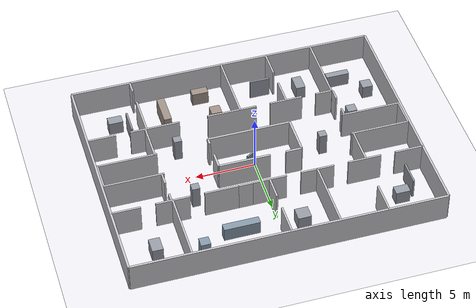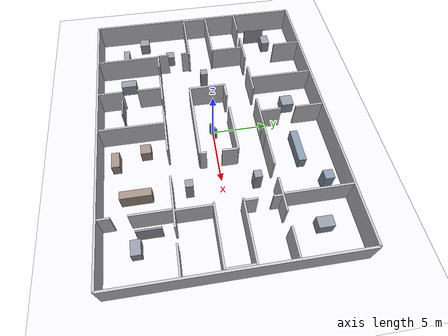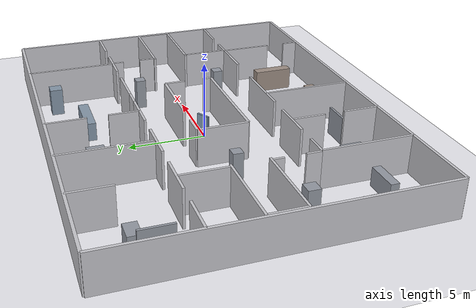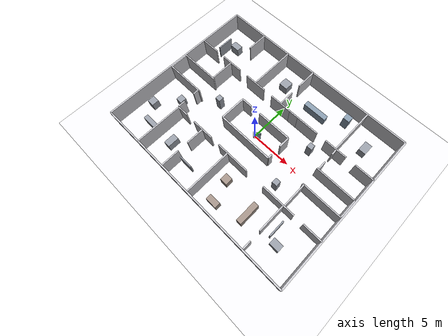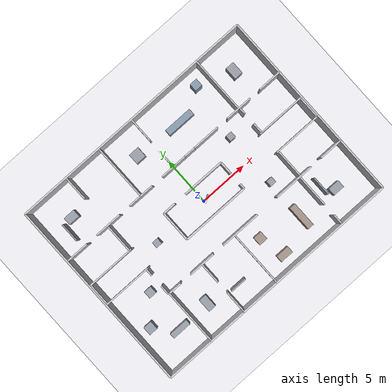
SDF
<?xml version="1.0"?>
<sdf version="1.9"><world name="new_room_world">
<plugin filename="gz-sim-physics-system" name="gz::sim::systems::Physics"/><plugin filename="gz-sim-user-commands-system" name="gz::sim::systems::UserCommands"/><plugin filename="gz-sim-scene-broadcaster-system" name="gz::sim::systems::SceneBroadcaster"/><plugin filename="gz-sim-sensors-system" name="gz::sim::systems::Sensors"><render_engine>ogre2</render_engine></plugin><plugin filename="gz-sim-imu-system" name="gz::sim::systems::Imu"/>
<physics name="new_room_realtime" type="ignored"><max_step_size>0.001</max_step_size><real_time_factor>1</real_time_factor></physics><gravity>0 0 -9.8</gravity><scene><ambient>0.85 0.85 0.87 1</ambient><background>0.68 0.68 0.71 1</background><shadows>false</shadows></scene><light name="sun" type="directional"><cast_shadows>false</cast_shadows><pose>0 0 10 0 0 0</pose><diffuse>0.95 0.95 0.95 1</diffuse><direction>-0.3 0.2 -1</direction></light>
<model name="new_room_ground"><static>true</static><link name="ground_link"><collision name="ground_collision"><geometry><plane><normal>0 0 1</normal><size>40 32</size></plane></geometry></collision><visual name="ground_visual"><geometry><plane><normal>0 0 1</normal><size>40 32</size></plane></geometry><material><ambient>0.92 0.92 0.94 1</ambient><diffuse>0.92 0.92 0.94 1</diffuse></material></visual></link></model>
<model name="mini_hospital_structure"><static>true</static><link name="structure">
<collision name="c0"><pose>0 10 1.25 0 0 0</pose><geometry><box><size>26 0.18 2.5</size></box></geometry></collision><visual name="v0"><pose>0 10 1.25 0 0 0</pose><geometry><box><size>26 0.18 2.5</size></box></geometry><material><ambient>0.78 0.78 0.80 1</ambient><diffuse>0.78 0.78 0.80 1</diffuse></material></visual>
<collision name="c1"><pose>0 -10 1.25 0 0 0</pose><geometry><box><size>26 0.18 2.5</size></box></geometry></collision><visual name="v1"><pose>0 -10 1.25 0 0 0</pose><geometry><box><size>26 0.18 2.5</size></box></geometry><material><ambient>0.78 0.78 0.80 1</ambient><diffuse>0.78 0.78 0.80 1</diffuse></material></visual>
<collision name="c2"><pose>-13 0 1.25 0 0 0</pose><geometry><box><size>0.18 20 2.5</size></box></geometry></collision><visual name="v2"><pose>-13 0 1.25 0 0 0</pose><geometry><box><size>0.18 20 2.5</size></box></geometry><material><ambient>0.78 0.78 0.80 1</ambient><diffuse>0.78 0.78 0.80 1</diffuse></material></visual>
<collision name="c3"><pose>13 0 1.25 0 0 0</pose><geometry><box><size>0.18 20 2.5</size></box></geometry></collision><visual name="v3"><pose>13 0 1.25 0 0 0</pose><geometry><box><size>0.18 20 2.5</size></box></geometry><material><ambient>0.78 0.78 0.80 1</ambient><diffuse>0.78 0.78 0.80 1</diffuse></material></visual>
<collision name="c4"><pose>-11.8 4.2 1.25 0 0 0</pose><geometry><box><size>2.4 0.15 2.5</size></box></geometry></collision><visual name="v4"><pose>-11.8 4.2 1.25 0 0 0</pose><geometry><box><size>2.4 0.15 2.5</size></box></geometry><material><ambient>0.78 0.78 0.80 1</ambient><diffuse>0.78 0.78 0.80 1</diffuse></material></visual>
<collision name="c5"><pose>-8 4.2 1.25 0 0 0</pose><geometry><box><size>2.8 0.15 2.5</size></box></geometry></collision><visual name="v5"><pose>-8 4.2 1.25 0 0 0</pose><geometry><box><size>2.8 0.15 2.5</size></box></geometry><material><ambient>0.78 0.78 0.80 1</ambient><diffuse>0.78 0.78 0.80 1</diffuse></material></visual>
<collision name="c6"><pose>-4 4.2 1.25 0 0 0</pose><geometry><box><size>2.8 0.15 2.5</size></box></geometry></collision><visual name="v6"><pose>-4 4.2 1.25 0 0 0</pose><geometry><box><size>2.8 0.15 2.5</size></box></geometry><material><ambient>0.78 0.78 0.80 1</ambient><diffuse>0.78 0.78 0.80 1</diffuse></material></visual>
<collision name="c7"><pose>0 4.2 1.25 0 0 0</pose><geometry><box><size>2.8 0.15 2.5</size></box></geometry></collision><visual name="v7"><pose>0 4.2 1.25 0 0 0</pose><geometry><box><size>2.8 0.15 2.5</size></box></geometry><material><ambient>0.78 0.78 0.80 1</ambient><diffuse>0.78 0.78 0.80 1</diffuse></material></visual>
<!-- Close the direct corridor door of north room B (gap x=[1.4,2.6]). -->
<collision name="c67"><pose>2 4.2 1.25 0 0 0</pose><geometry><box><size>1.2 0.15 2.5</size></box></geometry></collision><visual name="v67"><pose>2 4.2 1.25 0 0 0</pose><geometry><box><size>1.2 0.15 2.5</size></box></geometry><material><ambient>0.78 0.78 0.80 1</ambient><diffuse>0.78 0.78 0.80 1</diffuse></material></visual>
<collision name="c8"><pose>4 4.2 1.25 0 0 0</pose><geometry><box><size>2.8 0.15 2.5</size></box></geometry></collision><visual name="v8"><pose>4 4.2 1.25 0 0 0</pose><geometry><box><size>2.8 0.15 2.5</size></box></geometry><material><ambient>0.78 0.78 0.80 1</ambient><diffuse>0.78 0.78 0.80 1</diffuse></material></visual>
<collision name="c9"><pose>8 4.2 1.25 0 0 0</pose><geometry><box><size>2.8 0.15 2.5</size></box></geometry></collision><visual name="v9"><pose>8 4.2 1.25 0 0 0</pose><geometry><box><size>2.8 0.15 2.5</size></box></geometry><material><ambient>0.78 0.78 0.80 1</ambient><diffuse>0.78 0.78 0.80 1</diffuse></material></visual>
<collision name="c10"><pose>11.8 4.2 1.25 0 0 0</pose><geometry><box><size>2.4 0.15 2.5</size></box></geometry></collision><visual name="v10"><pose>11.8 4.2 1.25 0 0 0</pose><geometry><box><size>2.4 0.15 2.5</size></box></geometry><material><ambient>0.78 0.78 0.80 1</ambient><diffuse>0.78 0.78 0.80 1</diffuse></material></visual>
<!-- SW enlarged room: remove the old S1 corridor wall and retain only the S2 segment of c12. -->
<collision name="c12"><pose>-7.3 -4.2 1.25 0 0 0</pose><geometry><box><size>1.4 0.15 2.5</size></box></geometry></collision><visual name="v12"><pose>-7.3 -4.2 1.25 0 0 0</pose><geometry><box><size>1.4 0.15 2.5</size></box></geometry><material><ambient>0.78 0.78 0.80 1</ambient><diffuse>0.78 0.78 0.80 1</diffuse></material></visual>
<collision name="c13"><pose>-4 -4.2 1.25 0 0 0</pose><geometry><box><size>2.8 0.15 2.5</size></box></geometry></collision><visual name="v13"><pose>-4 -4.2 1.25 0 0 0</pose><geometry><box><size>2.8 0.15 2.5</size></box></geometry><material><ambient>0.78 0.78 0.80 1</ambient><diffuse>0.78 0.78 0.80 1</diffuse></material></visual>
<!-- S4+S5 corridor face: old doors at x=2 and x=6 are closed; one 2.40 m door is centered at x=4 (opening x=[2.8,5.2]). -->
<collision name="c14"><pose>0.7 -4.2 1.25 0 0 0</pose><geometry><box><size>4.2 0.15 2.5</size></box></geometry></collision><visual name="v14"><pose>0.7 -4.2 1.25 0 0 0</pose><geometry><box><size>4.2 0.15 2.5</size></box></geometry><material><ambient>0.78 0.78 0.80 1</ambient><diffuse>0.78 0.78 0.80 1</diffuse></material></visual>
<collision name="c16"><pose>7.3 -4.2 1.25 0 0 0</pose><geometry><box><size>4.2 0.15 2.5</size></box></geometry></collision><visual name="v16"><pose>7.3 -4.2 1.25 0 0 0</pose><geometry><box><size>4.2 0.15 2.5</size></box></geometry><material><ambient>0.78 0.78 0.80 1</ambient><diffuse>0.78 0.78 0.80 1</diffuse></material></visual>
<collision name="c17"><pose>11.8 -4.2 1.25 0 0 0</pose><geometry><box><size>2.4 0.15 2.5</size></box></geometry></collision><visual name="v17"><pose>11.8 -4.2 1.25 0 0 0</pose><geometry><box><size>2.4 0.15 2.5</size></box></geometry><material><ambient>0.78 0.78 0.80 1</ambient><diffuse>0.78 0.78 0.80 1</diffuse></material></visual>
<!-- N1-N2 partial divider: one 2.60 m segment attached to the north wall, leaving a 3.20 m opening from the corridor side. -->
<collision name="c18"><pose>-8 8.7 1.25 0 0 0</pose><geometry><box><size>0.15 2.6 2.5</size></box></geometry></collision><visual name="v18"><pose>-8 8.7 1.25 0 0 0</pose><geometry><box><size>0.15 2.6 2.5</size></box></geometry><material><ambient>0.78 0.78 0.80 1</ambient><diffuse>0.78 0.78 0.80 1</diffuse></material></visual>
<collision name="c20"><pose>-4 7.1 1.25 0 0 0</pose><geometry><box><size>0.15 5.8 2.5</size></box></geometry></collision><visual name="v20"><pose>-4 7.1 1.25 0 0 0</pose><geometry><box><size>0.15 5.8 2.5</size></box></geometry><material><ambient>0.78 0.78 0.80 1</ambient><diffuse>0.78 0.78 0.80 1</diffuse></material></visual>
<!-- North serial pair: internal 1.30 m door in divider x=0; B is reached through A. -->
<collision name="c21a"><pose>0 5.175 1.25 0 0 0</pose><geometry><box><size>0.15 1.95 2.5</size></box></geometry></collision><visual name="v21a"><pose>0 5.175 1.25 0 0 0</pose><geometry><box><size>0.15 1.95 2.5</size></box></geometry><material><ambient>0.78 0.78 0.80 1</ambient><diffuse>0.78 0.78 0.80 1</diffuse></material></visual>
<collision name="c21b"><pose>0 8.725 1.25 0 0 0</pose><geometry><box><size>0.15 2.55 2.5</size></box></geometry></collision><visual name="v21b"><pose>0 8.725 1.25 0 0 0</pose><geometry><box><size>0.15 2.55 2.5</size></box></geometry><material><ambient>0.78 0.78 0.80 1</ambient><diffuse>0.78 0.78 0.80 1</diffuse></material></visual>
<!-- N4+N5 merged: divider at x=4 removed. -->
<collision name="c23"><pose>8 7.1 1.25 0 0 0</pose><geometry><box><size>0.15 5.8 2.5</size></box></geometry></collision><visual name="v23"><pose>8 7.1 1.25 0 0 0</pose><geometry><box><size>0.15 5.8 2.5</size></box></geometry><material><ambient>0.78 0.78 0.80 1</ambient><diffuse>0.78 0.78 0.80 1</diffuse></material></visual>
<collision name="c24"><pose>-8 -7.1 1.25 0 0 0</pose><geometry><box><size>0.15 5.8 2.5</size></box></geometry></collision><visual name="v24"><pose>-8 -7.1 1.25 0 0 0</pose><geometry><box><size>0.15 5.8 2.5</size></box></geometry><material><ambient>0.78 0.78 0.80 1</ambient><diffuse>0.78 0.78 0.80 1</diffuse></material></visual>
<!-- South shifted loop pair: rooms [-8,-4] and [-4,0] both keep corridor doors, plus this 1.30 m internal connection. -->
<collision name="c25a"><pose>-4 -8.85 1.25 0 0 0</pose><geometry><box><size>0.15 2.3 2.5</size></box></geometry></collision><visual name="v25a"><pose>-4 -8.85 1.25 0 0 0</pose><geometry><box><size>0.15 2.3 2.5</size></box></geometry><material><ambient>0.78 0.78 0.80 1</ambient><diffuse>0.78 0.78 0.80 1</diffuse></material></visual>
<collision name="c25b"><pose>-4 -5.3 1.25 0 0 0</pose><geometry><box><size>0.15 2.2 2.5</size></box></geometry></collision><visual name="v25b"><pose>-4 -5.3 1.25 0 0 0</pose><geometry><box><size>0.15 2.2 2.5</size></box></geometry><material><ambient>0.78 0.78 0.80 1</ambient><diffuse>0.78 0.78 0.80 1</diffuse></material></visual>
<collision name="c26"><pose>0 -7.1 1.25 0 0 0</pose><geometry><box><size>0.15 5.8 2.5</size></box></geometry></collision><visual name="v26"><pose>0 -7.1 1.25 0 0 0</pose><geometry><box><size>0.15 5.8 2.5</size></box></geometry><material><ambient>0.78 0.78 0.80 1</ambient><diffuse>0.78 0.78 0.80 1</diffuse></material></visual>
<!-- S4+S5 merged: divider at x=4 removed. -->
<collision name="c28"><pose>8 -9.45 1.25 0 0 0</pose><geometry><box><size>0.15 1.1 2.5</size></box></geometry></collision><visual name="v28"><pose>8 -9.45 1.25 0 0 0</pose><geometry><box><size>0.15 1.1 2.5</size></box></geometry><material><ambient>0.78 0.78 0.80 1</ambient><diffuse>0.78 0.78 0.80 1</diffuse></material></visual>
<collision name="c29"><pose>8 -5.9 1.25 0 0 0</pose><geometry><box><size>0.15 3.4 2.5</size></box></geometry></collision><visual name="v29"><pose>8 -5.9 1.25 0 0 0</pose><geometry><box><size>0.15 3.4 2.5</size></box></geometry><material><ambient>0.78 0.78 0.80 1</ambient><diffuse>0.78 0.78 0.80 1</diffuse></material></visual>
<!-- Central north door shifted to the west side: 1.30 m opening centered at x=-1.50. -->
<collision name="c30"><pose>-2.825 1.6 1.25 0 0 0</pose><geometry><box><size>1.35 0.18 2.5</size></box></geometry></collision><visual name="v30"><pose>-2.825 1.6 1.25 0 0 0</pose><geometry><box><size>1.35 0.18 2.5</size></box></geometry><material><ambient>0.78 0.78 0.80 1</ambient><diffuse>0.78 0.78 0.80 1</diffuse></material></visual>
<collision name="c31"><pose>1.325 1.6 1.25 0 0 0</pose><geometry><box><size>4.35 0.18 2.5</size></box></geometry></collision><visual name="v31"><pose>1.325 1.6 1.25 0 0 0</pose><geometry><box><size>4.35 0.18 2.5</size></box></geometry><material><ambient>0.78 0.78 0.80 1</ambient><diffuse>0.78 0.78 0.80 1</diffuse></material></visual>
<collision name="c32"><pose>0 -1.6 1.25 0 0 0</pose><geometry><box><size>7 0.18 2.5</size></box></geometry></collision><visual name="v32"><pose>0 -1.6 1.25 0 0 0</pose><geometry><box><size>7 0.18 2.5</size></box></geometry><material><ambient>0.78 0.78 0.80 1</ambient><diffuse>0.78 0.78 0.80 1</diffuse></material></visual>
<collision name="c33"><pose>-3.5 0 1.25 0 0 0</pose><geometry><box><size>0.18 3.2 2.5</size></box></geometry></collision><visual name="v33"><pose>-3.5 0 1.25 0 0 0</pose><geometry><box><size>0.18 3.2 2.5</size></box></geometry><material><ambient>0.78 0.78 0.80 1</ambient><diffuse>0.78 0.78 0.80 1</diffuse></material></visual>
<collision name="c34"><pose>3.5 0.925 1.25 0 0 0</pose><geometry><box><size>0.18 1.35 2.5</size></box></geometry></collision><visual name="v34"><pose>3.5 0.925 1.25 0 0 0</pose><geometry><box><size>0.18 1.35 2.5</size></box></geometry><material><ambient>0.78 0.78 0.80 1</ambient><diffuse>0.78 0.78 0.80 1</diffuse></material></visual>
<collision name="c35"><pose>3.5 -1.325 1.25 0 0 0</pose><geometry><box><size>0.18 0.55 2.5</size></box></geometry></collision><visual name="v35"><pose>3.5 -1.325 1.25 0 0 0</pose><geometry><box><size>0.18 0.55 2.5</size></box></geometry><material><ambient>0.78 0.78 0.80 1</ambient><diffuse>0.78 0.78 0.80 1</diffuse></material></visual>
<collision name="c36"><pose>-10.4 1.15 1.25 0 0 0</pose><geometry><box><size>5 0.15 2.5</size></box></geometry></collision><visual name="v36"><pose>-10.4 1.15 1.25 0 0 0</pose><geometry><box><size>5 0.15 2.5</size></box></geometry><material><ambient>0.78 0.78 0.80 1</ambient><diffuse>0.78 0.78 0.80 1</diffuse></material></visual>
<collision name="c37"><pose>-10.4 -1.15 1.25 0 0 0</pose><geometry><box><size>5 0.15 2.5</size></box></geometry></collision><visual name="v37"><pose>-10.4 -1.15 1.25 0 0 0</pose><geometry><box><size>5 0.15 2.5</size></box></geometry><material><ambient>0.78 0.78 0.80 1</ambient><diffuse>0.78 0.78 0.80 1</diffuse></material></visual>
<collision name="c38"><pose>-12.85 0 1.25 0 0 0</pose><geometry><box><size>0.15 2.3 2.5</size></box></geometry></collision><visual name="v38"><pose>-12.85 0 1.25 0 0 0</pose><geometry><box><size>0.15 2.3 2.5</size></box></geometry><material><ambient>0.78 0.78 0.80 1</ambient><diffuse>0.78 0.78 0.80 1</diffuse></material></visual>
<collision name="c39"><pose>10.4 1.15 1.25 0 0 0</pose><geometry><box><size>5 0.15 2.5</size></box></geometry></collision><visual name="v39"><pose>10.4 1.15 1.25 0 0 0</pose><geometry><box><size>5 0.15 2.5</size></box></geometry><material><ambient>0.78 0.78 0.80 1</ambient><diffuse>0.78 0.78 0.80 1</diffuse></material></visual>
<collision name="c40"><pose>10.4 -1.15 1.25 0 0 0</pose><geometry><box><size>5 0.15 2.5</size></box></geometry></collision><visual name="v40"><pose>10.4 -1.15 1.25 0 0 0</pose><geometry><box><size>5 0.15 2.5</size></box></geometry><material><ambient>0.78 0.78 0.80 1</ambient><diffuse>0.78 0.78 0.80 1</diffuse></material></visual>
<collision name="c41"><pose>12.85 0 1.25 0 0 0</pose><geometry><box><size>0.15 2.3 2.5</size></box></geometry></collision><visual name="v41"><pose>12.85 0 1.25 0 0 0</pose><geometry><box><size>0.15 2.3 2.5</size></box></geometry><material><ambient>0.78 0.78 0.80 1</ambient><diffuse>0.78 0.78 0.80 1</diffuse></material></visual>
<collision name="c42"><pose>-8.1 2.65 1.25 0 0 0</pose><geometry><box><size>0.15 3 2.5</size></box></geometry></collision><visual name="v42"><pose>-8.1 2.65 1.25 0 0 0</pose><geometry><box><size>0.15 3 2.5</size></box></geometry><material><ambient>0.78 0.78 0.80 1</ambient><diffuse>0.78 0.78 0.80 1</diffuse></material></visual>
<collision name="c43"><pose>-8.1 -3.675 1.25 0 0 0</pose><geometry><box><size>0.15 0.95 2.5</size></box></geometry></collision><visual name="v43"><pose>-8.1 -3.675 1.25 0 0 0</pose><geometry><box><size>0.15 0.95 2.5</size></box></geometry><material><ambient>0.78 0.78 0.80 1</ambient><diffuse>0.78 0.78 0.80 1</diffuse></material></visual>
<collision name="c44"><pose>-8.1 -1.525 1.25 0 0 0</pose><geometry><box><size>0.15 0.75 2.5</size></box></geometry></collision><visual name="v44"><pose>-8.1 -1.525 1.25 0 0 0</pose><geometry><box><size>0.15 0.75 2.5</size></box></geometry><material><ambient>0.78 0.78 0.80 1</ambient><diffuse>0.78 0.78 0.80 1</diffuse></material></visual>
<collision name="c45"><pose>8.1 1.7 1.25 0 0 0</pose><geometry><box><size>0.15 1.1 2.5</size></box></geometry></collision><visual name="v45"><pose>8.1 1.7 1.25 0 0 0</pose><geometry><box><size>0.15 1.1 2.5</size></box></geometry><material><ambient>0.78 0.78 0.80 1</ambient><diffuse>0.78 0.78 0.80 1</diffuse></material></visual>
<collision name="c46"><pose>8.1 3.8 1.25 0 0 0</pose><geometry><box><size>0.15 0.7 2.5</size></box></geometry></collision><visual name="v46"><pose>8.1 3.8 1.25 0 0 0</pose><geometry><box><size>0.15 0.7 2.5</size></box></geometry><material><ambient>0.78 0.78 0.80 1</ambient><diffuse>0.78 0.78 0.80 1</diffuse></material></visual>
<collision name="c47"><pose>8.1 -2.65 1.25 0 0 0</pose><geometry><box><size>0.15 3 2.5</size></box></geometry></collision><visual name="v47"><pose>8.1 -2.65 1.25 0 0 0</pose><geometry><box><size>0.15 3 2.5</size></box></geometry><material><ambient>0.78 0.78 0.80 1</ambient><diffuse>0.78 0.78 0.80 1</diffuse></material></visual>
<collision name="c48"><pose>-10.2 7.1 0.6 0 0 0</pose><geometry><box><size>1.2 0.8 1.2</size></box></geometry></collision><visual name="v48"><pose>-10.2 7.1 0.6 0 0 0</pose><geometry><box><size>1.2 0.8 1.2</size></box></geometry><material><ambient>0.58 0.60 0.64 1</ambient><diffuse>0.58 0.60 0.64 1</diffuse></material></visual>
<collision name="c50"><pose>-1.8 7.3 0.6 0 0 0</pose><geometry><box><size>1.1 1.1 1.2</size></box></geometry></collision><visual name="v50"><pose>-1.8 7.3 0.6 0 0 0</pose><geometry><box><size>1.1 1.1 1.2</size></box></geometry><material><ambient>0.58 0.60 0.64 1</ambient><diffuse>0.58 0.60 0.64 1</diffuse></material></visual>
<!-- North double room N4+N5: one long horizontal obstacle plus one tall offset block. -->
<collision name="c51"><pose>3.2 7.0 0.6 0 0 0</pose><geometry><box><size>3.0 0.65 1.2</size></box></geometry></collision><visual name="v51"><pose>3.2 7.0 0.6 0 0 0</pose><geometry><box><size>3.0 0.65 1.2</size></box></geometry><material><ambient>0.52 0.59 0.66 1</ambient><diffuse>0.52 0.59 0.66 1</diffuse></material></visual>
<collision name="c52"><pose>10.2 7.2 0.6 0 0 0</pose><geometry><box><size>0.9 1.3 1.2</size></box></geometry></collision><visual name="v52"><pose>10.2 7.2 0.6 0 0 0</pose><geometry><box><size>0.9 1.3 1.2</size></box></geometry><material><ambient>0.58 0.60 0.64 1</ambient><diffuse>0.58 0.60 0.64 1</diffuse></material></visual>
<!-- S1 asymmetric obstacle layout: two offset blocks and one horizontal bar. -->
<collision name="c53"><pose>-9.4 -3.0 0.6 0 0 0</pose><geometry><box><size>0.8 0.8 1.2</size></box></geometry></collision><visual name="v53"><pose>-9.4 -3.0 0.6 0 0 0</pose><geometry><box><size>0.8 0.8 1.2</size></box></geometry><material><ambient>0.58 0.60 0.64 1</ambient><diffuse>0.58 0.60 0.64 1</diffuse></material></visual>
<collision name="c69"><pose>-11.6 -5.5 0.6 0 0 0</pose><geometry><box><size>0.9 0.9 1.2</size></box></geometry></collision><visual name="v69"><pose>-11.6 -5.5 0.6 0 0 0</pose><geometry><box><size>0.9 0.9 1.2</size></box></geometry><material><ambient>0.58 0.60 0.64 1</ambient><diffuse>0.58 0.60 0.64 1</diffuse></material></visual>
<collision name="c70"><pose>-9.6 -7.4 0.6 0 0 0</pose><geometry><box><size>2.0 0.55 1.2</size></box></geometry></collision><visual name="v70"><pose>-9.6 -7.4 0.6 0 0 0</pose><geometry><box><size>2.0 0.55 1.2</size></box></geometry><material><ambient>0.58 0.60 0.64 1</ambient><diffuse>0.58 0.60 0.64 1</diffuse></material></visual>
<collision name="c54"><pose>-6.1 -7.3 0.6 0 0 0</pose><geometry><box><size>0.8 1.4 1.2</size></box></geometry></collision><visual name="v54"><pose>-6.1 -7.3 0.6 0 0 0</pose><geometry><box><size>0.8 1.4 1.2</size></box></geometry><material><ambient>0.58 0.60 0.64 1</ambient><diffuse>0.58 0.60 0.64 1</diffuse></material></visual>
<!-- South double room S4+S5: two separated blocks plus a long vertical screen. -->
<collision name="c55"><pose>1.6 -6.1 0.6 0 0 0</pose><geometry><box><size>0.9 0.9 1.2</size></box></geometry></collision><visual name="v55"><pose>1.6 -6.1 0.6 0 0 0</pose><geometry><box><size>0.9 0.9 1.2</size></box></geometry><material><ambient>0.62 0.56 0.52 1</ambient><diffuse>0.62 0.56 0.52 1</diffuse></material></visual>
<collision name="c56"><pose>5.8 -7.1 0.75 0 0 0</pose><geometry><box><size>0.65 2.6 1.5</size></box></geometry></collision><visual name="v56"><pose>5.8 -7.1 0.75 0 0 0</pose><geometry><box><size>0.65 2.6 1.5</size></box></geometry><material><ambient>0.62 0.56 0.52 1</ambient><diffuse>0.62 0.56 0.52 1</diffuse></material></visual>
<collision name="c57"><pose>10 -7.3 0.6 0 0 0</pose><geometry><box><size>1.2 0.8 1.2</size></box></geometry></collision><visual name="v57"><pose>10 -7.3 0.6 0 0 0</pose><geometry><box><size>1.2 0.8 1.2</size></box></geometry><material><ambient>0.58 0.60 0.64 1</ambient><diffuse>0.58 0.60 0.64 1</diffuse></material></visual>
<!-- Central circulation landmarks: one centered column on the west, two columns on the east. -->
<collision name="c58"><pose>-5.8 0 1 0 0 0</pose><geometry><box><size>0.65 0.65 2</size></box></geometry></collision><visual name="v58"><pose>-5.8 0 1 0 0 0</pose><geometry><box><size>0.65 0.65 2</size></box></geometry><material><ambient>0.58 0.60 0.64 1</ambient><diffuse>0.58 0.60 0.64 1</diffuse></material></visual>
<collision name="c59"><pose>5.8 2.8 1 0 0 0</pose><geometry><box><size>0.65 0.65 2</size></box></geometry></collision><visual name="v59"><pose>5.8 2.8 1 0 0 0</pose><geometry><box><size>0.65 0.65 2</size></box></geometry><material><ambient>0.58 0.60 0.64 1</ambient><diffuse>0.58 0.60 0.64 1</diffuse></material></visual>
<collision name="c61"><pose>5.8 -2.8 1 0 0 0</pose><geometry><box><size>0.65 0.65 2</size></box></geometry></collision><visual name="v61"><pose>5.8 -2.8 1 0 0 0</pose><geometry><box><size>0.65 0.65 2</size></box></geometry><material><ambient>0.58 0.60 0.64 1</ambient><diffuse>0.58 0.60 0.64 1</diffuse></material></visual>
<collision name="c62"><pose>-11.2 6.1 0.9 0 0 0</pose><geometry><box><size>0.15 2 1.8</size></box></geometry></collision><visual name="v62"><pose>-11.2 6.1 0.9 0 0 0</pose><geometry><box><size>0.15 2 1.8</size></box></geometry><material><ambient>0.58 0.60 0.64 1</ambient><diffuse>0.58 0.60 0.64 1</diffuse></material></visual>
<collision name="c63"><pose>6.6 8.5 0.9 0 0 0</pose><geometry><box><size>0.8 0.8 1.8</size></box></geometry></collision><visual name="v63"><pose>6.6 8.5 0.9 0 0 0</pose><geometry><box><size>0.8 0.8 1.8</size></box></geometry><material><ambient>0.52 0.59 0.66 1</ambient><diffuse>0.52 0.59 0.66 1</diffuse></material></visual>
<collision name="c64"><pose>-2.8 -7.9 0.9 0 0 0</pose><geometry><box><size>1.7 0.15 1.8</size></box></geometry></collision><visual name="v64"><pose>-2.8 -7.9 0.9 0 0 0</pose><geometry><box><size>1.7 0.15 1.8</size></box></geometry><material><ambient>0.58 0.60 0.64 1</ambient><diffuse>0.58 0.60 0.64 1</diffuse></material></visual>
<collision name="c65"><pose>9 -6.2 0.9 0 0 0</pose><geometry><box><size>0.15 2 1.8</size></box></geometry></collision><visual name="v65"><pose>9 -6.2 0.9 0 0 0</pose><geometry><box><size>0.15 2 1.8</size></box></geometry><material><ambient>0.58 0.60 0.64 1</ambient><diffuse>0.58 0.60 0.64 1</diffuse></material></visual>
<collision name="c66"><pose>0.3 0 0.7 0 0 0.55</pose><geometry><box><size>0.9 0.15 1.4</size></box></geometry></collision><visual name="v66"><pose>0.3 0 0.7 0 0 0.55</pose><geometry><box><size>0.9 0.15 1.4</size></box></geometry><material><ambient>0.46 0.55 0.62 1</ambient><diffuse>0.46 0.55 0.62 1</diffuse></material></visual>
<!-- Extra separated block in S4+S5 to make its scan signature intentionally different from N4+N5. -->
<collision name="c68"><pose>2.3 -8.7 0.6 0 0 0</pose><geometry><box><size>1.4 0.7 1.2</size></box></geometry></collision><visual name="v68"><pose>2.3 -8.7 0.6 0 0 0</pose><geometry><box><size>1.4 0.7 1.2</size></box></geometry><material><ambient>0.62 0.56 0.52 1</ambient><diffuse>0.62 0.56 0.52 1</diffuse></material></visual>
</link></model></world></sdf>
